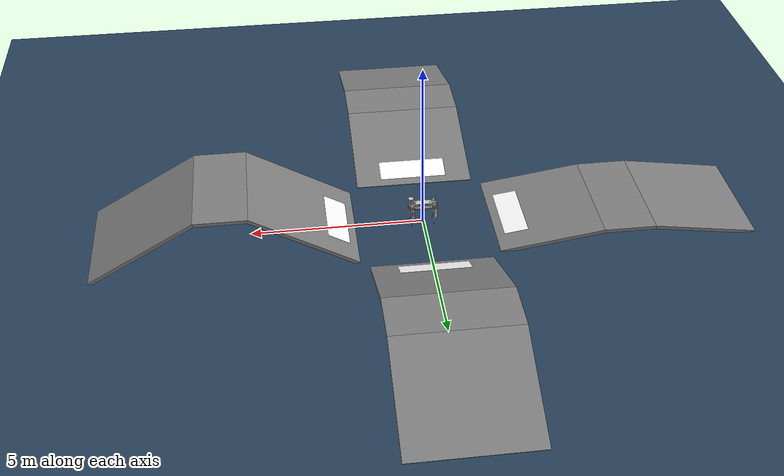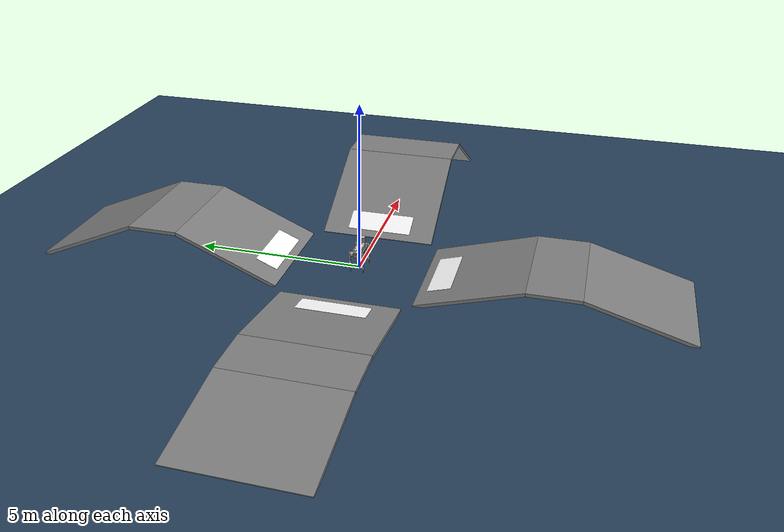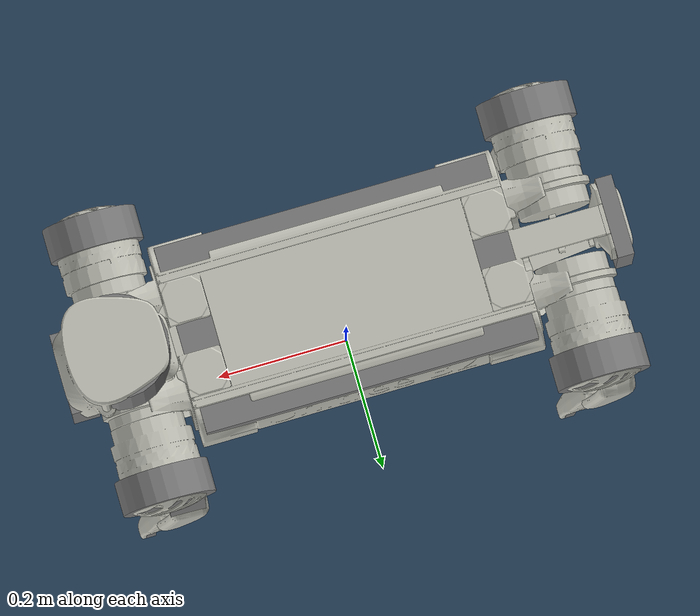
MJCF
<mujoco model="cross_slope_1_4_7_10">
  <include file="b2.xml"/>
  <!-- Terrain: Cross Slope Arch, Levels: 1,4,7,10. Cross Layout: Center Gap 2.0m. Slope angle: 8.36deg Slope angle: 23.22deg Slope angle: 29.68deg Slope angle: 16.07deg -->
  <statistic center="0 0 0.1" extent="0.8" />
  <visual>
    <headlight diffuse="0.6 0.6 0.6" ambient="0.3 0.3 0.3" specular="0 0 0" />
    <rgba haze="0.15 0.25 0.35 1" />
    <global azimuth="-130" elevation="-20" />
  </visual>
  <asset>
    <texture type="skybox" builtin="gradient" rgb1="0.3 0.5 0.7" rgb2="0 0 0" width="512" height="3072" />
    <texture type="2d" name="groundplane" builtin="checker" mark="edge" rgb1="0.2 0.3 0.4" rgb2="0.1 0.2 0.3" markrgb="0.8 0.8 0.8" width="300" height="300" />
    <material name="groundplane" texture="groundplane" texuniform="true" texrepeat="5 5" reflectance="0.0" />
    <texture name="tex_label_1" type="2d" file="./imgs/label_1.png" />
    <material name="mat_label_1" texture="tex_label_1" specular="0" shininess="0" emission="1" texrepeat="1 1" rgba="1 1 1 1" />
    <texture name="tex_label_7" type="2d" file="./imgs/label_7.png" />
    <material name="mat_label_7" texture="tex_label_7" specular="0" shininess="0" emission="1" texrepeat="1 1" rgba="1 1 1 1" />
    <texture name="tex_label_10" type="2d" file="./imgs/label_10.png" />
    <material name="mat_label_10" texture="tex_label_10" specular="0" shininess="0" emission="1" texrepeat="1 1" rgba="1 1 1 1" />
    <texture name="tex_label_4" type="2d" file="./imgs/label_4.png" />
    <material name="mat_label_4" texture="tex_label_4" specular="0" shininess="0" emission="1" texrepeat="1 1" rgba="1 1 1 1" />
  </asset>
  <worldbody>
    <light pos="0 0 1.5" dir="0 0 -1" directional="true" />
    <geom name="floor" size="0 0 0.05" type="plane" material="groundplane" />
    <geom pos="-3.5072718512065544 1.8458756480250123e-16 0.1710316244452101" type="box" size="1.5161201304646015 1.75 0.05" quat="6.106936001461366e-17 0.07291258089041118 -4.464607940250726e-18 0.9973383355451144" />
    <geom pos="-2.593329632609217 7.266192354141525e-17 0.08924094950084102" type="box" size="1.0 0.35064935064935066 0.001" quat="0.7052247002012548 0.05155698038142243 0.05155698038142242 0.7052247002012547" contype="0" conaffinity="0" group="1" material="mat_label_1" rgba="1 1 1 1" />
    <geom pos="-5.75 4.592425496802575e-16 0.39100000000000007" type="box" size="0.75 1.75 0.05" quat="6.123233995736766e-17 0.0 0.0 1.0" />
    <geom pos="-7.992728148793446 7.338975345580137e-16 0.1710316244452101" type="box" size="1.5161201304646015 1.75 0.05" quat="6.106936001461366e-17 -0.07291258089041118 4.464607940250726e-18 0.9973383355451144" />
    <geom pos="9.305555860662829e-17 3.519712600750146 0.5975498817012911" type="box" size="1.6322047206156463 1.75 0.05" quat="0.69264030455464 0.1423004163959321 -0.14230041639593213 0.6926403045546399" />
    <geom pos="3.371531723015055e-17 2.5506129155545008 0.23838921373370156" type="box" size="1.0 0.35064935064935066 0.001" quat="0.9795413125474028 0.20124317879846595 0.0 0.0" contype="0" conaffinity="0" group="1" material="mat_label_7" rgba="1 1 1 1" />
    <geom pos="2.2962127484012875e-16 5.75 1.2369999999999999" type="box" size="0.75 1.75 0.05" quat="0.7071067811865476 0.0 0.0 0.7071067811865475" />
    <geom pos="3.661869910736292e-16 7.980287399249854 0.5975498817012911" type="box" size="1.6322047206156463 1.75 0.05" quat="0.69264030455464 -0.1423004163959321 0.14230041639593213 0.6926403045546399" />
    <geom pos="3.524760152200491 0.0 0.811561136490367" type="box" size="1.7265645079173844 1.75 0.05" quat="0.9666377993314406 0.0 -0.25614715478347516 0.0" />
    <geom pos="2.520275956027577 0.0 0.2988593809462753" type="box" size="1.0 0.35064935064935066 0.001" quat="0.6835161428585028 0.1811233901290355 -0.18112339012903547 -0.6835161428585027" contype="0" conaffinity="0" group="1" material="mat_label_10" rgba="1 1 1 1" />
    <geom pos="5.75 0.0 1.66" type="box" size="0.75 1.75 0.05" quat="1.0 0.0 0.0 0.0" />
    <geom pos="7.975239847799509 0.0 0.811561136490367" type="box" size="1.7265645079173844 1.75 0.05" quat="0.9666377993314406 0.0 0.25614715478347516 0.0" />
    <geom pos="9.269581606609379e-17 -3.5138375592151503 0.38395291939183823" type="box" size="1.5609689298637561 1.75 0.05" quat="0.7001681248391769 -0.09881597522258663 -0.09881597522258664 -0.7001681248391768" />
    <geom pos="3.5270529839894456e-17 -2.5760114649293357 0.16797259380613377" type="box" size="1.0 0.35064935064935066 0.001" quat="6.063148280875342e-17 8.557029219681535e-18 -0.13974689233890575 -0.9901872580889023" contype="0" conaffinity="0" group="1" material="mat_label_4" rgba="1 1 1 1" />
    <geom pos="2.2962127484012875e-16 -5.75 0.8140000000000001" type="box" size="0.75 1.75 0.05" quat="0.7071067811865476 0.0 0.0 -0.7071067811865475" />
    <geom pos="3.665467336141637e-16 -7.98616244078485 0.38395291939183823" type="box" size="1.5609689298637561 1.75 0.05" quat="0.7001681248391769 0.09881597522258663 0.09881597522258664 -0.7001681248391768" />
  </worldbody>
  <keyframe>
    <key name="b2_start" qpos="0 0 0.64 1 0 0 0 0.1 0.8 -1.5 -0.1 0.8 -1.5 0.1 1.0 -1.5 -0.1 1.0 -1.5"/>
  </keyframe>
</mujoco>

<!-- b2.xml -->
<mujoco model="b2_description">
  <compiler angle="radian" meshdir="assets" />
  <statistic meansize="0.25" extent="2.0" center="0 0 -0.35" />
  <default>
    <joint damping="0.02" armature="0.02" frictionloss="0.05" />
    <geom condim="3" friction="0.9 0.02 0.01" />
    <default class="visual">
      <geom type="mesh" contype="0" conaffinity="0" group="2" />
    </default>
  </default>
  <asset>
    <material name="b2_body" rgba="0.78 0.78 0.74 1" />
    <material name="black" rgba="0.06 0.06 0.06 1" />
    <mesh name="FL_calf_mesh" file="FL_calf.obj" />
    <mesh name="FL_hip_mesh" file="FL_hip.obj" />
    <mesh name="FL_thigh_mesh" file="FL_thigh.obj" />
    <mesh name="FR_calf_mesh" file="FR_calf.obj" />
    <mesh name="FR_hip_mesh" file="FR_hip.obj" />
    <mesh name="FR_thigh_mesh" file="FR_thigh.obj" />
    <mesh name="RL_calf_mesh" file="RL_calf.obj" />
    <mesh name="RL_hip_mesh" file="RL_hip.obj" />
    <mesh name="RL_thigh_mesh" file="RL_thigh.obj" />
    <mesh name="RR_calf_mesh" file="RR_calf.obj" />
    <mesh name="RR_hip_mesh" file="RR_hip.obj" />
    <mesh name="RR_thigh_mesh" file="RR_thigh.obj" />
    <mesh name="base_link_mesh" file="base_link.obj" />
  </asset>
  <worldbody>
    <body name="base" pos="0 0 0.58">
      <inertial pos="0.000458 0.005261 0.000665" mass="35.86" fullinertia="0.27466 1.0618 1.1825 -0.000622 0.00315 -0.00139" />
      <freejoint name="root" />
      <geom name="base_visual_0" mesh="base_link_mesh" material="b2_body" class="visual" />
      <geom name="base_collision_0" type="box" size="0.25 0.14 0.075" />
      <body pos="0.34218 0 0.17851" name="lidar_link">
        <geom pos="0 0 -0.02" name="lidar_link_collision_0" type="cylinder" size="0.076 0.08" />
      </body>
      <body pos="0.41251 0.024997 0.04765" quat="0.27059575 -0.65328103 0.65328343 -0.27059675" name="f_dc_link" />
      <body pos="-0.4081 -0.025 0.024861" quat="0.27075907 -0.65321336 -0.65321576 0.27076006" name="r_dc_link" />
      <body pos="0 -0.02341 0.04927" name="imu_link" />
      <body name="head_Link">
        <inertial pos="0.33989 -0.000168 0.12029" mass="3.6885" fullinertia="0.026455 0.029221 0.010918 3.15e-05 0.00166 -3.27e-05" />
        <geom pos="0.41 0 0.005" name="head_Link_collision_0" type="box" size="0.02 0.06 0.07" />
      </body>
      <body name="tail_link">
        <inertial pos="-0.37448 0.000488 0.006495" mass="0.795" fullinertia="0.0028118 0.0047506 0.0029154 1.95e-05 -7.87e-06 -1.57e-05" />
        <geom pos="-0.405 0 0.005" name="tail_link_collision_0" type="box" size="0.0125 0.06 0.07" />
      </body>
      <body pos="0.3285 0.072 0" name="FL_hip">
        <inertial pos="-0.003841 -0.009068 0" mass="2.673" fullinertia="0.0033188 0.0048743 0.0037087 7.16e-05 -3.77e-07 4e-09" />
        <joint name="FL_hip_joint" axis="1 0 0" range="-0.87 0.87" actuatorfrcrange="-200 200" />
        <geom name="FL_hip_visual_0" mesh="FL_hip_mesh" material="b2_body" class="visual" />
        <geom pos="0 0.12 0" quat="0.70710678 0.70710678 0 0" name="FL_hip_collision_0" type="cylinder" size="0.07 0.025" />
        <body pos="0 0.11973 0" name="FL_thigh">
          <inertial pos="-0.006279 -0.032049 -0.057835" mass="4.536" fullinertia="0.062299 0.061399 0.0081997 0.00087781 -0.0036475 0.0083537" />
          <joint name="FL_thigh_joint" axis="0 1 0" range="-0.94 4.69" actuatorfrcrange="-200 200" />
          <geom name="FL_thigh_visual_0" mesh="FL_thigh_mesh" material="b2_body" class="visual" />
          <geom pos="-0.025 0 -0.16" quat="0.70738827 0 0.70682518 0" name="FL_thigh_collision_0" type="box" size="0.16 0.02225 0.027" />
          <body pos="0 -8.6984e-05 -0.35" name="FL_calf">
            <inertial pos="0.012422 0 -0.12499" mass="0.404" fullinertia="0.01143 0.011534 0.000331 0 0.000643 0" />
            <joint name="FL_calf_joint" axis="0 1 0" range="-2.82 -0.43" actuatorfrcrange="-320 320" />
            <geom name="FL_calf_visual_0" mesh="FL_calf_mesh" material="b2_body" class="visual" />
            <geom pos="-0.002 0 -0.03" quat="0.82533561 0 0.56464247 0" name="FL_calf_collision_0" type="box" size="0.05 0.01225 0.009" />
            <geom pos="0.022 0 -0.1" quat="0.78070695 0 0.62489732 0" name="FL_calf_collision_1" type="box" size="0.05 0.01225 0.009" />
            <geom pos="0.036 0 -0.225" quat="0.72138236 0 0.692537 0" name="FL_calf_collision_2" type="box" size="0.075 0.01225 0.0075" />
            <geom pos="0.023 0 -0.31" quat="0.54030231 0 0.84147098 0" name="FL_calf_collision_3" type="box" size="0.025 0.014 0.0175" />
            <body pos="0 0 -0.35" name="FL_foot">
              <inertial pos="-0.006511 0 -0.010144" mass="0.126" fullinertia="3.8e-05 4.1e-05 4.2e-05 0 1.1e-05 0" />
              <geom quat="0.70738827 0.70682518 0 0" name="FL_foot_collision_0" type="sphere" size="0.032" />
            </body>
          </body>
          <body pos="0 -0.05788 0" name="FL_calf_rotor">
            <inertial pos="0 0 0" mass="0.2734" fullinertia="0.000144463 0.000144463 0.000263053 0 0 0" />
            <geom quat="0.70710678 0.70710678 0 0" name="FL_calf_rotor_collision_0" type="cylinder" size="0.05 0.01" />
          </body>
        </body>
        <body pos="0 -0.00798 0" name="FL_thigh_rotor">
          <inertial pos="0 0 0" mass="0.2734" fullinertia="0.000144463 0.000144463 0.000263053 0 0 0" />
          <geom quat="0.70710678 0.70710678 0 0" name="FL_thigh_rotor_collision_0" type="cylinder" size="0.05 0.01" />
        </body>
      </body>
      <body pos="0.20205 0.072 0" name="FL_hip_rotor">
        <inertial pos="0 0 0" mass="0.2734" fullinertia="0.000144463 0.000144463 0.000263053 0 0 0" />
        <geom quat="0.70710678 0 0.70710678 0" name="FL_hip_rotor_collision_0" type="cylinder" size="0.05 0.01" />
      </body>
      <body pos="0.3285 -0.072 0" name="FR_hip">
        <inertial pos="-0.009305 0.010228 0.000264" mass="2.673" fullinertia="0.0026431 0.0046728 0.0034208 -0.00019234 -6.76e-06 7.16e-06" />
        <joint name="FR_hip_joint" axis="1 0 0" range="-0.87 0.87" actuatorfrcrange="-200 200" />
        <geom name="FR_hip_visual_0" mesh="FR_hip_mesh" material="b2_body" class="visual" />
        <geom pos="0 -0.12 0" quat="0.70710678 0.70710678 0 0" name="FR_hip_collision_0" type="cylinder" size="0.07 0.025" />
        <body pos="0 -0.11973 0" name="FR_thigh">
          <inertial pos="-0.006279 0.032049 -0.057835" mass="4.536" fullinertia="0.06229908 0.06139927 0.008199745 -0.000877808 -0.003647464 -0.008353671" />
          <joint name="FR_thigh_joint" axis="0 1 0" range="-0.94 4.69" actuatorfrcrange="-200 200" />
          <geom name="FR_thigh_visual_0" mesh="FR_thigh_mesh" material="b2_body" class="visual" />
          <geom pos="-0.03 0 -0.2" quat="0.70738827 0 0.70682518 0" name="FR_thigh_collision_0" type="box" size="0.125 0.014 0.02" />
          <body pos="0 8.6986e-05 -0.35" name="FR_calf">
            <inertial pos="0.012422 0 -0.12499" mass="0.404" fullinertia="0.01143 0.011534 0.000331 0 0.000643 0" />
            <joint name="FR_calf_joint" axis="0 1 0" range="-2.82 -0.43" actuatorfrcrange="-320 320" />
            <geom name="FR_calf_visual_0" mesh="FR_calf_mesh" material="b2_body" class="visual" />
            <geom pos="-0.002 0 -0.03" quat="0.82533561 0 0.56464247 0" name="FR_calf_collision_0" type="box" size="0.05 0.01225 0.009" />
            <geom pos="0.022 0 -0.1" quat="0.78070695 0 0.62489732 0" name="FR_calf_collision_1" type="box" size="0.05 0.01225 0.009" />
            <geom pos="0.036 0 -0.225" quat="0.72138236 0 0.692537 0" name="FR_calf_collision_2" type="box" size="0.075 0.01225 0.0075" />
            <geom pos="0.023 0 -0.31" quat="0.54030231 0 0.84147098 0" name="FR_calf_collision_3" type="box" size="0.025 0.014 0.0175" />
            <body pos="0 0 -0.35" name="FR_foot">
              <inertial pos="-0.006511 0 -0.010144" mass="0.126" fullinertia="3.8e-05 4.1e-05 4.2e-05 0 1.1e-05 0" />
              <geom quat="0.70738827 0.70682518 0 0" name="FR_foot_collision_0" type="sphere" size="0.032" />
            </body>
          </body>
          <body pos="0 0.05788 0" name="FR_calf_rotor">
            <inertial pos="0 0 0" mass="0.2734" fullinertia="0.000144463 0.000144463 0.000263053 0 0 0" />
            <geom quat="0.70710678 0.70710678 0 0" name="FR_calf_rotor_collision_0" type="cylinder" size="0.05 0.01" />
          </body>
        </body>
        <body pos="0 0.00798 0" name="FR_thigh_rotor">
          <inertial pos="0 0 0" mass="0.2734" fullinertia="0.000144463 0.000144463 0.000263053 0 0 0" />
          <geom quat="0.70710678 0.70710678 0 0" name="FR_thigh_rotor_collision_0" type="cylinder" size="0.05 0.01" />
        </body>
      </body>
      <body pos="0.20205 -0.072 0" name="FR_hip_rotor">
        <inertial pos="0 0 0" mass="0.2734" fullinertia="0.000144463 0.000144463 0.000263053 0 0 0" />
        <geom quat="0.70710678 0 0.70710678 0" name="FR_hip_rotor_collision_0" type="cylinder" size="0.05 0.01" />
      </body>
      <body pos="-0.3285 0.072 0" name="RL_hip">
        <inertial pos="0.009305 -0.010228 0.000264" mass="2.673" fullinertia="0.0026431 0.0046728 0.0034208 -0.00019234 6.76e-06 -7.16e-06" />
        <joint name="RL_hip_joint" axis="1 0 0" range="-0.87 0.87" actuatorfrcrange="-200 200" />
        <geom name="RL_hip_visual_0" mesh="RL_hip_mesh" material="b2_body" class="visual" />
        <geom pos="0 0.12 0" quat="0.70710678 0.70710678 0 0" name="RL_hip_collision_0" type="cylinder" size="0.07 0.025" />
        <body pos="0 0.11973 0" name="RL_thigh">
          <inertial pos="-0.006279 -0.032049 -0.057835" mass="4.536" fullinertia="0.06229908 0.06139927 0.008199745 0.000877808 -0.003647464 0.008353671" />
          <joint name="RL_thigh_joint" axis="0 1 0" range="-0.94 4.69" actuatorfrcrange="-200 200" />
          <geom name="RL_thigh_visual_0" mesh="RL_thigh_mesh" material="b2_body" class="visual" />
          <geom pos="-0.03 0 -0.2" quat="0.70738827 0 0.70682518 0" name="RL_thigh_collision_0" type="box" size="0.125 0.014 0.02" />
          <body pos="0 -8.6984e-05 -0.35" name="RL_calf">
            <inertial pos="0.012422 0 -0.12499" mass="0.404" fullinertia="0.01143 0.011534 0.000331 0 0.000643 0" />
            <joint name="RL_calf_joint" axis="0 1 0" range="-2.82 -0.43" actuatorfrcrange="-320 320" />
            <geom name="RL_calf_visual_0" mesh="RL_calf_mesh" material="b2_body" class="visual" />
            <geom pos="-0.002 0 -0.03" quat="0.82533561 0 0.56464247 0" name="RL_calf_collision_0" type="box" size="0.05 0.01225 0.009" />
            <geom pos="0.022 0 -0.1" quat="0.78070695 0 0.62489732 0" name="RL_calf_collision_1" type="box" size="0.05 0.01225 0.009" />
            <geom pos="0.036 0 -0.225" quat="0.72138236 0 0.692537 0" name="RL_calf_collision_2" type="box" size="0.075 0.01225 0.0075" />
            <geom pos="0.023 0 -0.31" quat="0.54030231 0 0.84147098 0" name="RL_calf_collision_3" type="box" size="0.025 0.014 0.0175" />
            <body pos="0 0 -0.35" name="RL_foot">
              <inertial pos="-0.006511 0 -0.010144" mass="0.126" fullinertia="3.8e-05 4.1e-05 4.2e-05 0 1.1e-05 0" />
              <geom quat="0.70738827 0.70682518 0 0" name="RL_foot_collision_0" type="sphere" size="0.032" />
            </body>
          </body>
          <body pos="0 -0.05788 0" name="RL_calf_rotor">
            <inertial pos="0 0 0" mass="0.2734" fullinertia="0.000144463 0.000144463 0.000263053 0 0 0" />
            <geom quat="0.70710678 0.70710678 0 0" name="RL_calf_rotor_collision_0" type="cylinder" size="0.05 0.01" />
          </body>
        </body>
        <body pos="0 -0.00798 0" name="RL_thigh_rotor">
          <inertial pos="0 0 0" mass="0.2734" fullinertia="0.000144463 0.000144463 0.000263053 0 0 0" />
          <geom quat="0.70710678 0.70710678 0 0" name="RL_thigh_rotor_collision_0" type="cylinder" size="0.05 0.01" />
        </body>
      </body>
      <body pos="-0.20205 0.072 0" name="RL_hip_rotor">
        <inertial pos="0 0 0" mass="0.2734" fullinertia="0.000144463 0.000144463 0.000263053 0 0 0" />
        <geom quat="0.70710678 0 0.70710678 0" name="RL_hip_rotor_collision_0" type="cylinder" size="0.05 0.01" />
      </body>
      <body pos="-0.3285 -0.072 0" name="RR_hip">
        <inertial pos="0.003841 0.009068 0" mass="2.673" fullinertia="0.0033188 0.0048743 0.0037087 7.16e-05 3.77e-07 -4e-09" />
        <joint name="RR_hip_joint" axis="1 0 0" range="-0.87 0.87" actuatorfrcrange="-200 200" />
        <geom name="RR_hip_visual_0" mesh="RR_hip_mesh" material="b2_body" class="visual" />
        <geom pos="0 -0.12 0" quat="0.70710678 0.70710678 0 0" name="RR_hip_collision_0" type="cylinder" size="0.07 0.025" />
        <body pos="0 -0.11973 0" name="RR_thigh">
          <inertial pos="-0.006279 0.032049 -0.057835" mass="4.536" fullinertia="0.062299 0.061399 0.0081997 -0.00087781 -0.0036475 -0.0083537" />
          <joint name="RR_thigh_joint" axis="0 1 0" range="-0.94 4.69" actuatorfrcrange="-200 200" />
          <geom name="RR_thigh_visual_0" mesh="RR_thigh_mesh" material="b2_body" class="visual" />
          <geom pos="-0.03 0 -0.2" quat="0.70738827 0 0.70682518 0" name="RR_thigh_collision_0" type="box" size="0.125 0.014 0.02" />
          <body pos="0 8.6986e-05 -0.35" name="RR_calf">
            <inertial pos="0.012422 0 -0.12499" mass="0.404" fullinertia="0.01143 0.011534 0.000331 0 0.000643 0" />
            <joint name="RR_calf_joint" axis="0 1 0" range="-2.82 -0.43" actuatorfrcrange="-320 320" />
            <geom name="RR_calf_visual_0" mesh="RR_calf_mesh" material="b2_body" class="visual" />
            <geom pos="-0.002 0 -0.03" quat="0.82533561 0 0.56464247 0" name="RR_calf_collision_0" type="box" size="0.05 0.01225 0.009" />
            <geom pos="0.022 0 -0.1" quat="0.78070695 0 0.62489732 0" name="RR_calf_collision_1" type="box" size="0.05 0.01225 0.009" />
            <geom pos="0.036 0 -0.225" quat="0.72138236 0 0.692537 0" name="RR_calf_collision_2" type="box" size="0.075 0.01225 0.0075" />
            <geom pos="0.023 0 -0.31" quat="0.54030231 0 0.84147098 0" name="RR_calf_collision_3" type="box" size="0.025 0.014 0.0175" />
            <body pos="0 -8.6984e-05 -0.35" name="RR_foot">
              <inertial pos="-0.006511 0 -0.010144" mass="0.126" fullinertia="3.8e-05 4.1e-05 4.2e-05 0 1.1e-05 0" />
              <geom quat="0.70738827 0.70682518 0 0" name="RR_foot_collision_0" type="sphere" size="0.032" />
            </body>
          </body>
          <body pos="0 0.05788 0" name="RR_calf_rotor">
            <inertial pos="0 0 0" mass="0.2734" fullinertia="0.000144463 0.000144463 0.000263053 0 0 0" />
            <geom quat="0.70710678 0.70710678 0 0" name="RR_calf_rotor_collision_0" type="cylinder" size="0.05 0.01" />
          </body>
        </body>
        <body pos="0 0.00798 0" name="RR_thigh_rotor">
          <inertial pos="0 0 0" mass="0.2734" fullinertia="0.000144463 0.000144463 0.000263053 0 0 0" />
          <geom quat="0.70710678 0.70710678 0 0" name="RR_thigh_rotor_collision_0" type="cylinder" size="0.05 0.01" />
        </body>
      </body>
      <body pos="-0.20205 -0.072 0" name="RR_hip_rotor">
        <inertial pos="0 0 0" mass="0.2734" fullinertia="0.000144463 0.000144463 0.000263053 0 0 0" />
        <geom quat="0.70710678 0 0.70710678 0" name="RR_hip_rotor_collision_0" type="cylinder" size="0.05 0.01" />
      </body>
      <body pos="0.39079 0 -0.013433" quat="0.49999816 -0.5 0.50000184 -0.5" name="f_oc_link" />
      <body pos="-0.38451 0 -0.023249" quat="0.49999816 -0.5 -0.50000184 0.5" name="r_oc_link" />
    </body>
  </worldbody>
  <contact>
    <!-- Training disables robot self-collisions; keep same-leg internal contacts from locking the leg. -->
    <exclude body1="base" body2="FL_hip_rotor" />
    <exclude body1="FL_hip" body2="FL_hip_rotor" />
    <exclude body1="FL_hip" body2="FL_thigh" />
    <exclude body1="FL_hip" body2="FL_thigh_rotor" />
    <exclude body1="FL_thigh" body2="FL_thigh_rotor" />
    <exclude body1="FL_thigh" body2="FL_calf" />
    <exclude body1="FL_thigh" body2="FL_calf_rotor" />
    <exclude body1="FL_calf" body2="FL_calf_rotor" />
    <exclude body1="FL_calf" body2="FL_foot" />
    <exclude body1="base" body2="FR_hip_rotor" />
    <exclude body1="FR_hip" body2="FR_hip_rotor" />
    <exclude body1="FR_hip" body2="FR_thigh" />
    <exclude body1="FR_hip" body2="FR_thigh_rotor" />
    <exclude body1="FR_thigh" body2="FR_thigh_rotor" />
    <exclude body1="FR_thigh" body2="FR_calf" />
    <exclude body1="FR_thigh" body2="FR_calf_rotor" />
    <exclude body1="FR_calf" body2="FR_calf_rotor" />
    <exclude body1="FR_calf" body2="FR_foot" />
    <exclude body1="base" body2="RL_hip_rotor" />
    <exclude body1="RL_hip" body2="RL_hip_rotor" />
    <exclude body1="RL_hip" body2="RL_thigh" />
    <exclude body1="RL_hip" body2="RL_thigh_rotor" />
    <exclude body1="RL_thigh" body2="RL_thigh_rotor" />
    <exclude body1="RL_thigh" body2="RL_calf" />
    <exclude body1="RL_thigh" body2="RL_calf_rotor" />
    <exclude body1="RL_calf" body2="RL_calf_rotor" />
    <exclude body1="RL_calf" body2="RL_foot" />
    <exclude body1="base" body2="RR_hip_rotor" />
    <exclude body1="RR_hip" body2="RR_hip_rotor" />
    <exclude body1="RR_hip" body2="RR_thigh" />
    <exclude body1="RR_hip" body2="RR_thigh_rotor" />
    <exclude body1="RR_thigh" body2="RR_thigh_rotor" />
    <exclude body1="RR_thigh" body2="RR_calf" />
    <exclude body1="RR_calf" body2="RR_calf_rotor" />
    <exclude body1="RR_thigh" body2="RR_calf_rotor" />
    <exclude body1="RR_calf" body2="RR_foot" />
  </contact>
  <actuator>
    <motor name="FL_hip" joint="FL_hip_joint" ctrllimited="true" ctrlrange="-200 200" />
    <motor name="FL_thigh" joint="FL_thigh_joint" ctrllimited="true" ctrlrange="-200 200" />
    <motor name="FL_calf" joint="FL_calf_joint" ctrllimited="true" ctrlrange="-320 320" />
    <motor name="FR_hip" joint="FR_hip_joint" ctrllimited="true" ctrlrange="-200 200" />
    <motor name="FR_thigh" joint="FR_thigh_joint" ctrllimited="true" ctrlrange="-200 200" />
    <motor name="FR_calf" joint="FR_calf_joint" ctrllimited="true" ctrlrange="-320 320" />
    <motor name="RL_hip" joint="RL_hip_joint" ctrllimited="true" ctrlrange="-200 200" />
    <motor name="RL_thigh" joint="RL_thigh_joint" ctrllimited="true" ctrlrange="-200 200" />
    <motor name="RL_calf" joint="RL_calf_joint" ctrllimited="true" ctrlrange="-320 320" />
    <motor name="RR_hip" joint="RR_hip_joint" ctrllimited="true" ctrlrange="-200 200" />
    <motor name="RR_thigh" joint="RR_thigh_joint" ctrllimited="true" ctrlrange="-200 200" />
    <motor name="RR_calf" joint="RR_calf_joint" ctrllimited="true" ctrlrange="-320 320" />
  </actuator>
</mujoco>
